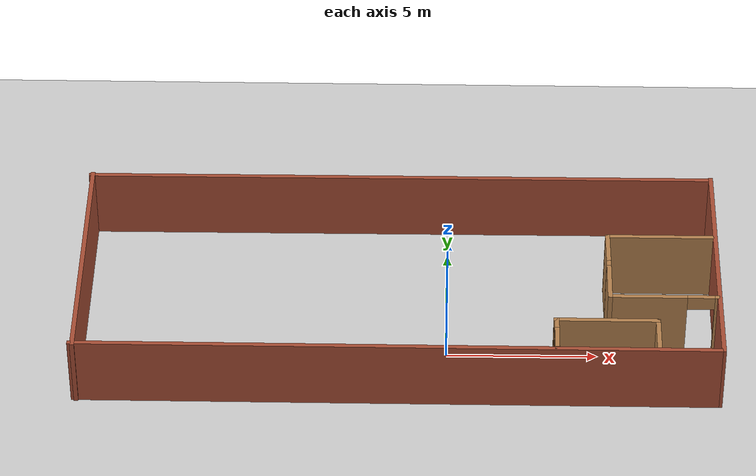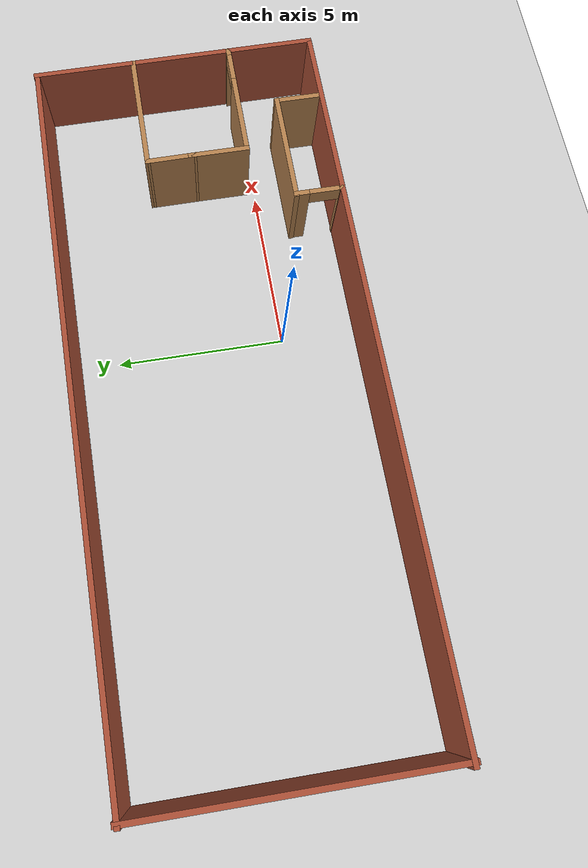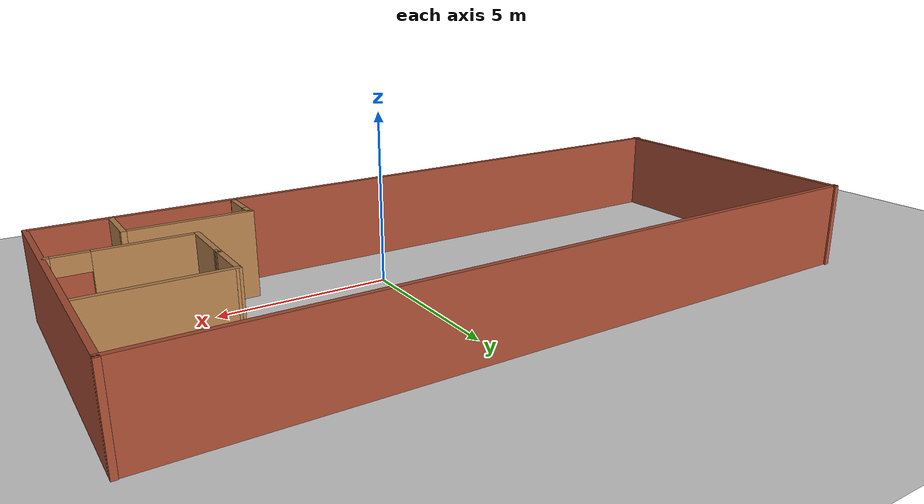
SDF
<sdf version="1.7">
 <world name="default">
  <light name="sun" type="directional">
   <pose>0 0 10 0 -0 0</pose>
   <diffuse>0.8 0.8 0.8 1</diffuse>
   <specular>0.2 0.2 0.2 1</specular>
   <attenuation>
    <range>1000</range>
    <constant>0.9</constant>
    <linear>0.01</linear>
    <quadratic>0.001</quadratic>
   </attenuation>
   <direction>-0.5 0.1 -0.9</direction>
   <spot><inner_angle>0</inner_angle><outer_angle>0</outer_angle><falloff>0</falloff></spot>
  </light>
  <model name="ground_plane">
   <static>1</static>
   <link name="link">
    <collision name="collision">
     <geometry><plane><normal>0 0 1</normal><size>100 100</size></plane></geometry>
     <surface>
      <contact><collide_bitmask>65535</collide_bitmask></contact>
      <friction><ode><mu>100</mu><mu2>50</mu2></ode></friction>
     </surface>
    </collision>
    <visual name="visual">
     <cast_shadows>0</cast_shadows>
     <geometry><plane><normal>0 0 1</normal><size>100 100</size></plane></geometry>
     <material>
      <script><uri>file://media/materials/scripts/gazebo.material</uri><name>Gazebo/Grey</name></script>
     </material>
    </visual>
   </link>
  </model>
  <gravity>0 0 -9.8</gravity>
  <magnetic_field>6e-06 2.3e-05 -4.2e-05</magnetic_field>
  <atmosphere type="adiabatic"/>
  <physics type="ode">
   <max_step_size>0.001</max_step_size>
   <real_time_factor>1</real_time_factor>
   <real_time_update_rate>1000</real_time_update_rate>
  </physics>
  <scene><ambient>0.4 0.4 0.4 1</ambient><background>0.7 0.7 0.7 1</background><shadows>1</shadows></scene>
  <audio><device>default</device></audio>
  <spherical_coordinates>
   <surface_model>EARTH_WGS84</surface_model>
   <latitude_deg>0</latitude_deg>
   <longitude_deg>0</longitude_deg>
   <elevation>0</elevation>
   <heading_deg>0</heading_deg>
  </spherical_coordinates>
  <model name="my_floor2">
   <pose>-1.62946 1.96957 0 0 -0 0</pose>
   <link name="Wall_1">
    <collision name="Wall_1_Collision">
     <geometry><box><size>21.25 0.15 2.5</size></box></geometry>
     <pose>0 0 1.25 0 -0 0</pose>
    </collision>
    <visual name="Wall_1_Visual">
     <pose>0 0 1.25 0 -0 0</pose>
     <geometry><box><size>21.25 0.15 2.5</size></box></geometry>
     <material>
      <script><uri>file://media/materials/scripts/gazebo.material</uri><name>Gazebo/Bricks</name></script>
      <ambient>1 1 1 1</ambient>
     </material>
     <meta><layer>0</layer></meta>
    </visual>
    <pose>-0.054085 -4.26992 0 0 -0 0</pose>
   </link>
   <link name="Wall_16">
    <pose>5.2194 -3.55475 0 0 -0 -1.5708</pose>
    <visual name="Wall_16_Visual_0">
     <pose>-0.514948 0 1.25 0 -0 0</pose>
     <geometry><box><size>0.470104 0.15 2.5</size></box></geometry>
     <material>
      <script><uri>file://media/materials/scripts/gazebo.material</uri><name>Gazebo/Wood</name></script>
      <ambient>1 1 1 1</ambient>
     </material>
     <meta><layer>0</layer></meta>
    </visual>
    <collision name="Wall_16_Collision_0">
     <geometry><box><size>0.470104 0.15 2.5</size></box></geometry>
     <pose>-0.514948 0 1.25 0 -0 0</pose>
    </collision>
    <visual name="Wall_16_Visual_1">
     <pose>0.685052 0 1.25 0 -0 0</pose>
     <geometry><box><size>0.129896 0.15 2.5</size></box></geometry>
     <material>
      <script><uri>file://media/materials/scripts/gazebo.material</uri><name>Gazebo/Wood</name></script>
      <ambient>1 1 1 1</ambient>
     </material>
     <meta><layer>0</layer></meta>
    </visual>
    <collision name="Wall_16_Collision_1">
     <geometry><box><size>0.129896 0.15 2.5</size></box></geometry>
     <pose>0.685052 0 1.25 0 -0 0</pose>
    </collision>
    <visual name="Wall_16_Visual_2">
     <pose>0.170104 0 2.25 0 -0 0</pose>
     <geometry><box><size>0.9 0.15 0.5</size></box></geometry>
     <material>
      <script><uri>file://media/materials/scripts/gazebo.material</uri><name>Gazebo/Wood</name></script>
      <ambient>1 1 1 1</ambient>
     </material>
     <meta><layer>0</layer></meta>
    </visual>
    <collision name="Wall_16_Collision_2">
     <geometry><box><size>0.9 0.15 0.5</size></box></geometry>
     <pose>0.170104 0 2.25 0 -0 0</pose>
    </collision>
   </link>
   <link name="Wall_19">
    <collision name="Wall_19_Collision">
     <geometry><box><size>8.73203 0.15 2.5</size></box></geometry>
     <pose>0 0 1.25 0 -0 0</pose>
    </collision>
    <visual name="Wall_19_Visual">
     <pose>0 0 1.25 0 -0 0</pose>
     <geometry><box><size>8.73203 0.15 2.5</size></box></geometry>
     <material>
      <script><uri>file://media/materials/scripts/gazebo.material</uri><name>Gazebo/Bricks</name></script>
      <ambient>1 1 1 1</ambient>
     </material>
     <meta><layer>0</layer></meta>
    </visual>
    <pose>-10.526 -0.026654 0 0 -0 -1.568</pose>
   </link>
   <link name="Wall_21">
    <collision name="Wall_21_Collision">
     <geometry><box><size>21.3205 0.15 2.5</size></box></geometry>
     <pose>0 0 1.25 0 -0 0</pose>
    </collision>
    <visual name="Wall_21_Visual">
     <pose>0 0 1.25 0 -0 0</pose>
     <geometry><box><size>21.3205 0.15 2.5</size></box></geometry>
     <material>
      <script><uri>file://media/materials/scripts/gazebo.material</uri><name>Gazebo/Bricks</name></script>
      <ambient>1 1 1 1</ambient>
     </material>
     <meta><layer>0</layer></meta>
    </visual>
    <pose>-0.005764 4.2514 0 0 -0 0.003774</pose>
   </link>
   <link name="Wall_22">
    <collision name="Wall_22_Collision">
     <geometry><box><size>8.73259 0.15 2.5</size></box></geometry>
     <pose>0 0 1.25 0 -0 0</pose>
    </collision>
    <visual name="Wall_22_Visual">
     <pose>0 0 1.25 0 -0 0</pose>
     <geometry><box><size>8.73259 0.15 2.5</size></box></geometry>
     <material>
      <script><uri>file://media/materials/scripts/gazebo.material</uri><name>Gazebo/Bricks</name></script>
      <ambient>1 1 1 1</ambient>
     </material>
     <meta><layer>0</layer></meta>
    </visual>
    <pose>10.5916 0.026373 0 0 -0 -1.56795</pose>
   </link>
   <link name="Wall_24">
    <collision name="Wall_24_Collision">
     <geometry><box><size>1.75 0.15 2.5</size></box></geometry>
     <pose>0 0 1.25 0 -0 0</pose>
    </collision>
    <visual name="Wall_24_Visual">
     <pose>0 0 1.25 0 -0 0</pose>
     <geometry><box><size>1.75 0.15 2.5</size></box></geometry>
     <material>
      <script><uri>file://media/materials/scripts/gazebo.material</uri><name>Gazebo/Wood</name></script>
      <ambient>1 1 1 1</ambient>
     </material>
     <meta><layer>0</layer></meta>
    </visual>
    <pose>6.99226 -0.899114 0 0 -0 -1.5708</pose>
   </link>
   <link name="Wall_25">
    <pose>8.79226 -1.69911 0 0 -0 0</pose>
    <visual name="Wall_25_Visual_0">
     <pose>-0.566753 0 1.25 0 -0 0</pose>
     <geometry><box><size>2.61649 0.15 2.5</size></box></geometry>
     <material>
      <script><uri>file://media/materials/scripts/gazebo.material</uri><name>Gazebo/Wood</name></script>
      <ambient>1 1 1 1</ambient>
     </material>
     <meta><layer>0</layer></meta>
    </visual>
    <collision name="Wall_25_Collision_0">
     <geometry><box><size>2.61649 0.15 2.5</size></box></geometry>
     <pose>-0.566753 0 1.25 0 -0 0</pose>
    </collision>
    <visual name="Wall_25_Visual_1">
     <pose>1.75825 0 1.25 0 -0 0</pose>
     <geometry><box><size>0.233506 0.15 2.5</size></box></geometry>
     <material>
      <script><uri>file://media/materials/scripts/gazebo.material</uri><name>Gazebo/Wood</name></script>
      <ambient>1 1 1 1</ambient>
     </material>
     <meta><layer>0</layer></meta>
    </visual>
    <collision name="Wall_25_Collision_1">
     <geometry><box><size>0.233506 0.15 2.5</size></box></geometry>
     <pose>1.75825 0 1.25 0 -0 0</pose>
    </collision>
    <visual name="Wall_25_Visual_2">
     <pose>1.19149 0 2.25 0 -0 0</pose>
     <geometry><box><size>0.9 0.15 0.5</size></box></geometry>
     <material>
      <script><uri>file://media/materials/scripts/gazebo.material</uri><name>Gazebo/Wood</name></script>
      <ambient>1 1 1 1</ambient>
     </material>
     <meta><layer>0</layer></meta>
    </visual>
    <collision name="Wall_25_Collision_2">
     <geometry><box><size>0.9 0.15 0.5</size></box></geometry>
     <pose>1.19149 0 2.25 0 -0 0</pose>
    </collision>
   </link>
   <link name="Wall_27">
    <collision name="Wall_27_Collision">
     <geometry><box><size>0.25 0.15 2.5</size></box></geometry>
     <pose>0 0 1.25 0 -0 0</pose>
    </collision>
    <visual name="Wall_27_Visual">
     <pose>0 0 1.25 0 -0 0</pose>
     <geometry><box><size>0.25 0.15 2.5</size></box></geometry>
     <material>
      <script><uri>file://media/materials/scripts/gazebo.material</uri><name>Gazebo/Wood</name></script>
      <ambient>1 1 1 1</ambient>
     </material>
     <meta><layer>0</layer></meta>
    </visual>
    <pose>6.99226 -0.049114 0 0 -0 1.5708</pose>
   </link>
   <link name="Wall_29">
    <collision name="Wall_29_Collision">
     <geometry><box><size>1.55238 0.15 2.5</size></box></geometry>
     <pose>0 0 1.25 0 -0 0</pose>
    </collision>
    <visual name="Wall_29_Visual">
     <pose>0 0 1.25 0 -0 0</pose>
     <geometry><box><size>1.55238 0.15 2.5</size></box></geometry>
     <material>
      <script><uri>file://media/materials/scripts/gazebo.material</uri><name>Gazebo/Wood</name></script>
      <ambient>1 1 1 1</ambient>
     </material>
     <meta><layer>0</layer></meta>
    </visual>
    <pose>6.98643 0.602053 0 0 -0 1.57912</pose>
   </link>
   <link name="Wall_30">
    <collision name="Wall_30_Collision">
     <geometry><box><size>3.75 0.15 2.5</size></box></geometry>
     <pose>0 0 1.25 0 -0 0</pose>
    </collision>
    <visual name="Wall_30_Visual">
     <pose>0 0 1.25 0 -0 0</pose>
     <geometry><box><size>3.75 0.15 2.5</size></box></geometry>
     <material>
      <script><uri>file://media/materials/scripts/gazebo.material</uri><name>Gazebo/Wood</name></script>
      <ambient>1 1 1 1</ambient>
     </material>
     <meta><layer>0</layer></meta>
    </visual>
    <pose>8.78059 1.30322 0 0 -0 0</pose>
   </link>
   <link name="Wall_5">
    <collision name="Wall_5_Collision">
     <geometry><box><size>1.5 0.15 2.5</size></box></geometry>
     <pose>0 0 1.25 0 -0 0</pose>
    </collision>
    <visual name="Wall_5_Visual">
     <pose>0 0 1.25 0 -0 0</pose>
     <geometry><box><size>1.5 0.15 2.5</size></box></geometry>
     <material>
      <script><uri>file://media/materials/scripts/gazebo.material</uri><name>Gazebo/Wood</name></script>
      <ambient>1 1 1 1</ambient>
     </material>
     <meta><layer>0</layer></meta>
    </visual>
    <pose>8.52865 -3.55475 0 0 -0 1.5708</pose>
   </link>
   <link name="Wall_6">
    <collision name="Wall_6_Collision">
     <geometry><box><size>3.48556 0.15 2.5</size></box></geometry>
     <pose>0 0 1.25 0 -0 0</pose>
    </collision>
    <visual name="Wall_6_Visual">
     <pose>0 0 1.25 0 -0 0</pose>
     <geometry><box><size>3.48556 0.15 2.5</size></box></geometry>
     <material>
      <script><uri>file://media/materials/scripts/gazebo.material</uri><name>Gazebo/Wood</name></script>
      <ambient>1 1 1 1</ambient>
     </material>
     <meta><layer>0</layer></meta>
    </visual>
    <pose>6.86088 -2.87975 0 0 -0 3.14159</pose>
   </link>
   <static>1</static>
  </model>
 </world>
</sdf>
